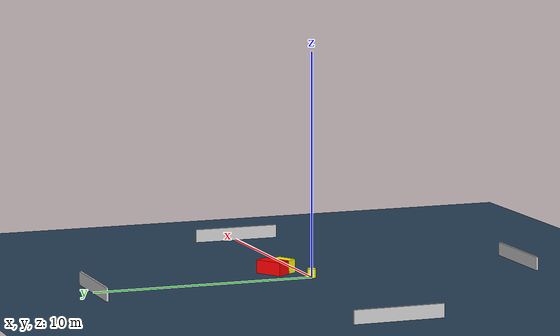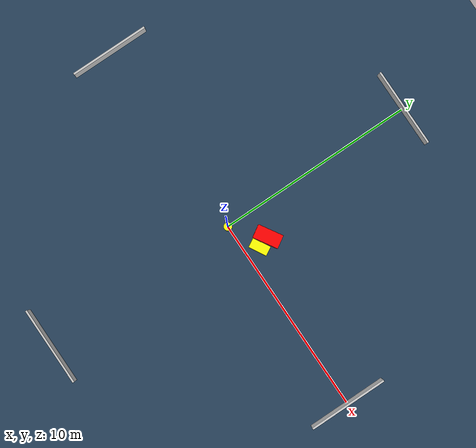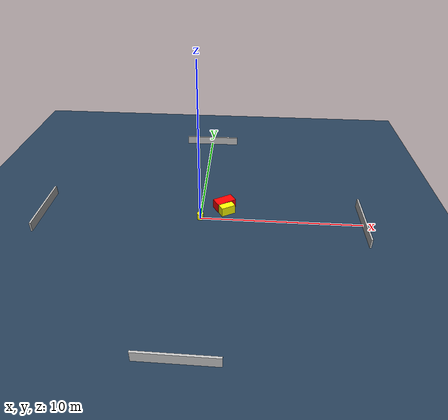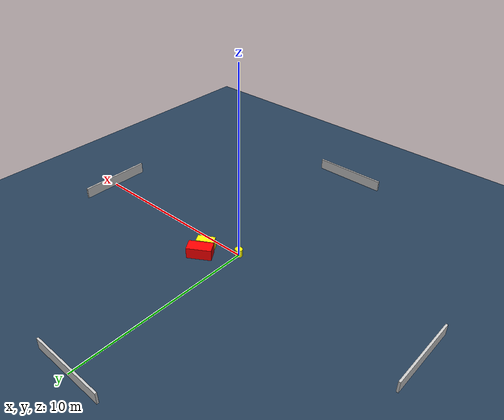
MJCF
<?xml version="1.0" ?>
<mujoco model="generated_environment">
  <option timestep="0.01" integrator="RK4" cone="elliptic"/>
  <default>
    <geom density="1"/>
  </default>
  <asset>
    <texture builtin="gradient" height="3072" name="skybox" rgb1="0.3 0.5 0.7" rgb2="0 0 0" type="skybox" width="512"/>
    <texture builtin="checker" height="300" name="groundplane" rgb1="0.2 0.3 0.4" rgb2="0.1 0.2 0.3" type="2d" width="300"/>
    <material name="groundplane" reflectance="0.2" texrepeat="5 5" texture="groundplane"/>
  </asset>
  <worldbody>
    <light dir="0 0 -1" directional="true" pos="0 0 1.5"/>
    <geom condim="3" friction="0.5 0.005 0.001" material="groundplane" name="floor" pos="0 0 0" size="0 0 0.05" type="plane"/>
    <body name="walls">
      <geom name="wall_1" condim="4" pos="-10.0 0.0 0.3" rgba="0.800000011920929 0.800000011920929 0.800000011920929 1.0" size="0.05 2.0 0.3" type="box"/>
      <geom name="wall_2" condim="4" pos="10.0 0.0 0.3" rgba="0.800000011920929 0.800000011920929 0.800000011920929 1.0" size="0.05 2.0 0.3" type="box"/>
      <geom name="wall_3" condim="4" pos="0.0 -10.0 0.3" rgba="0.800000011920929 0.800000011920929 0.800000011920929 1.0" size="2.0 0.05 0.3" type="box"/>
      <geom name="wall_4" condim="4" pos="0.0 10.0 0.3" rgba="0.800000011920929 0.800000011920929 0.800000011920929 1.0" size="2.0 0.05 0.3" type="box"/>
    </body>
    <body name="robot">
      <joint name="joint_x" type="slide" pos="0 0 0" axis="1 0 0"/>
      <joint name="joint_y" type="slide" pos="0 0 0" axis="0 1 0"/>
      <geom name="robot" type="cylinder" pos="0.0 0.0 0.2" size="0.2 0.2 0.0" mass="5.0" friction="1.0 0.005 0.0001" condim="4" rgba="1.0 1.0 0.0 1.0"/>
    </body>
    <body name="obstacle_1_movable">
      <geom name="obstacle_1_movable" condim="4" pos="1.6277152856231054 0.6990151225460981 0.3" euler="0 0 29.50623098487768" friction="0.0 0.005 0.001" rgba="1.0 1.0 0.0 1.0" size="0.46068852219519196 0.23599626637383847 0.3" type="box" mass="0.1"/>
      <joint type="free"/>
    </body>
    <body name="obstacle_2_static">
      <geom name="obstacle_2_static" condim="4" pos="1.4413004499476958 1.2976156913598473 0.3" euler="0 0 31.782170556635112" friction="0.0 0.005 0.001" rgba="1.0 0.0 0.0 1.0" size="0.6429049235734121 0.33837628390920904 0.3" type="box"/>
    </body>
  </worldbody>
  <actuator>
    <motor name="actuator_x" joint="joint_x" gear="1" ctrlrange="-1 1"/>
    <motor name="actuator_y" joint="joint_y" gear="1" ctrlrange="-1 1"/>
  </actuator>
</mujoco>
